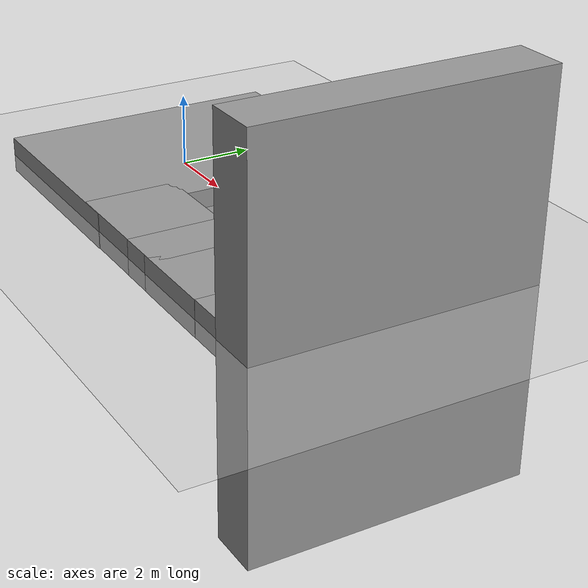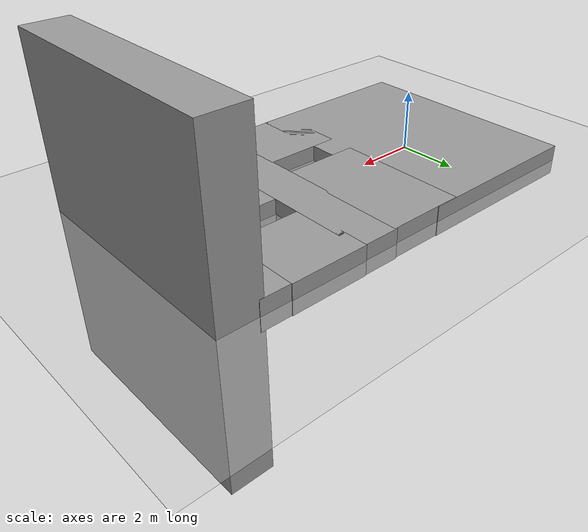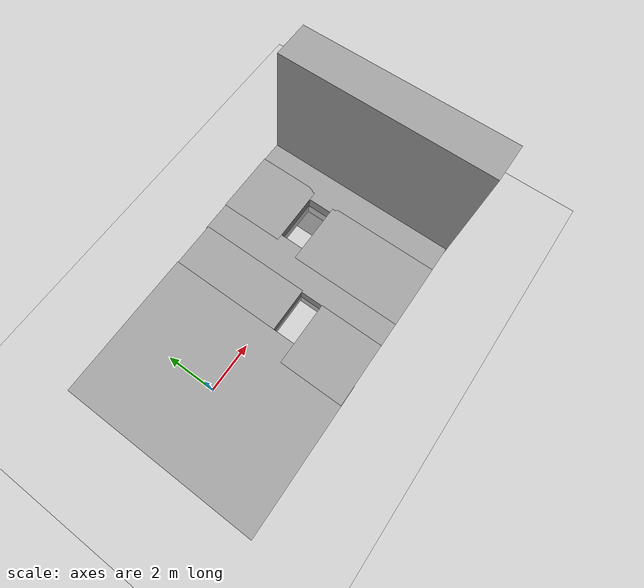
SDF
<sdf version="1.6">
 <world name="base_world">
  <physics name="default_physics" default="0" type="ode">
   <max_step_size>0.001</max_step_size>
   <real_time_factor>1</real_time_factor>
   <real_time_update_rate>1000</real_time_update_rate>
  </physics>
  <light name="sun" type="directional">
   <pose>0 0 10 0 -0 0</pose>
   <diffuse>0.8 0.8 0.8 1</diffuse>
   <specular>0.2 0.2 0.2 1</specular>
   <attenuation>
    <range>1000</range>
    <constant>0.9</constant>
    <linear>0.01</linear>
    <quadratic>0.001</quadratic>
   </attenuation>
   <direction>-0.5 0.1 -0.9</direction>
  </light>
  <model name="ground_plane">
   <static>1</static>
   <link name="link">
    <collision name="collision">
     <geometry><plane><normal>0 0 1</normal><size>100 100</size></plane></geometry>
     <surface>
      <contact><collide_bitmask>65535</collide_bitmask></contact>
      <friction><ode><mu>100</mu><mu2>50</mu2></ode></friction>
     </surface>
    </collision>
    <visual name="visual">
     <cast_shadows>0</cast_shadows>
     <geometry><plane><normal>0 0 1</normal><size>100 100</size></plane></geometry>
     <material>
      <script><uri>file://media/materials/scripts/gazebo.material</uri><name>Gazebo/Grey</name></script>
     </material>
    </visual>
   </link>
  </model>
  <gravity>0 0 -9.81</gravity>
  <magnetic_field>6e-06 2.3e-05 -4.2e-05</magnetic_field>
  <atmosphere type="adiabatic"/>
  <scene><ambient>0.4 0.4 0.4 1</ambient><background>0.7 0.7 0.7 1</background><shadows>1</shadows></scene>
  <audio><device>default</device></audio>
  <spherical_coordinates>
   <surface_model>EARTH_WGS84</surface_model>
   <latitude_deg>0</latitude_deg>
   <longitude_deg>0</longitude_deg>
   <elevation>0</elevation>
   <heading_deg>0</heading_deg>
  </spherical_coordinates>
  <model name="static_box">
   <link name="link">
    <inertial>
     <mass>0.0183792</mass>
     <inertia>
      <ixx>0.0035453</ixx>
      <ixy>0</ixy>
      <ixz>0</ixz>
      <iyy>0.00349943</iyy>
      <iyz>0</iyz>
      <izz>0.00398153</izz>
     </inertia>
    </inertial>
    <visual name="visual">
     <geometry><box><size>5.97092 8.00215 1</size></box></geometry>
     <material>
      <script><name>Gazebo/Grey</name><uri>file://media/materials/scripts/gazebo.material</uri></script>
     </material>
    </visual>
    <collision name="collision">
     <geometry><box><size>5.97092 8.00215 1</size></box></geometry>
     <surface>
      <friction>
       <ode><mu>1</mu><mu2>1</mu2><fdir1>0 0 0</fdir1><slip1>0</slip1><slip2>0</slip2></ode>
       <torsional>
        <coefficient>1</coefficient>
        <patch_radius>0</patch_radius>
        <surface_radius>0</surface_radius>
        <use_patch_radius>1</use_patch_radius>
        <ode><slip>0</slip></ode>
       </torsional>
      </friction>
      <bounce><restitution_coefficient>0</restitution_coefficient><threshold>1e+06</threshold></bounce>
      <contact>
       <collide_without_contact>0</collide_without_contact>
       <collide_without_contact_bitmask>1</collide_without_contact_bitmask>
       <collide_bitmask>1</collide_bitmask>
       <ode>
        <soft_cfm>0</soft_cfm>
        <soft_erp>0.2</soft_erp>
        <kp>1e+13</kp>
        <kd>1</kd>
        <max_vel>0.01</max_vel>
        <min_depth>0</min_depth>
       </ode>
       <bullet>
        <split_impulse>1</split_impulse>
        <split_impulse_penetration_threshold>-0.01</split_impulse_penetration_threshold>
        <soft_cfm>0</soft_cfm>
        <soft_erp>0.2</soft_erp>
        <kp>1e+13</kp>
        <kd>1</kd>
       </bullet>
      </contact>
     </surface>
    </collision>
   </link>
   <static>1</static>
   <pose>0.002926 -0.010903 0 0 -0 0</pose>
  </model>
  <model name="static_box_0">
   <link name="link">
    <inertial>
     <mass>0.0183792</mass>
     <inertia>
      <ixx>0.0035453</ixx>
      <ixy>0</ixy>
      <ixz>0</ixz>
      <iyy>0.00349943</iyy>
      <iyz>0</iyz>
      <izz>0.00398153</izz>
     </inertia>
    </inertial>
    <visual name="visual">
     <geometry><box><size>2.60974 2.57253 1</size></box></geometry>
     <material>
      <script><name>Gazebo/Grey</name><uri>file://media/materials/scripts/gazebo.material</uri></script>
     </material>
    </visual>
    <collision name="collision">
     <geometry><box><size>2.60974 2.57253 1</size></box></geometry>
     <surface>
      <friction>
       <ode><mu>1</mu><mu2>1</mu2><fdir1>0 0 0</fdir1><slip1>0</slip1><slip2>0</slip2></ode>
       <torsional>
        <coefficient>1</coefficient>
        <patch_radius>0</patch_radius>
        <surface_radius>0</surface_radius>
        <use_patch_radius>1</use_patch_radius>
        <ode><slip>0</slip></ode>
       </torsional>
      </friction>
      <bounce><restitution_coefficient>0</restitution_coefficient><threshold>1e+06</threshold></bounce>
      <contact>
       <collide_without_contact>0</collide_without_contact>
       <collide_without_contact_bitmask>1</collide_without_contact_bitmask>
       <collide_bitmask>1</collide_bitmask>
       <ode>
        <soft_cfm>0</soft_cfm>
        <soft_erp>0.2</soft_erp>
        <kp>1e+13</kp>
        <kd>1</kd>
        <max_vel>0.01</max_vel>
        <min_depth>0</min_depth>
       </ode>
       <bullet>
        <split_impulse>1</split_impulse>
        <split_impulse_penetration_threshold>-0.01</split_impulse_penetration_threshold>
        <soft_cfm>0</soft_cfm>
        <soft_erp>0.2</soft_erp>
        <kp>1e+13</kp>
        <kd>1</kd>
       </bullet>
      </contact>
     </surface>
    </collision>
   </link>
   <static>1</static>
   <pose>3.46463 -2.71007 0 0 -0 0</pose>
  </model>
  <model name="static_box_0_clone">
   <link name="link">
    <inertial>
     <mass>0.0183792</mass>
     <inertia>
      <ixx>0.0035453</ixx>
      <ixy>0</ixy>
      <ixz>0</ixz>
      <iyy>0.00349943</iyy>
      <iyz>0</iyz>
      <izz>0.00398153</izz>
     </inertia>
    </inertial>
    <visual name="visual">
     <geometry><box><size>2.64007 4.48993 1</size></box></geometry>
     <material>
      <script><name>Gazebo/Grey</name><uri>file://media/materials/scripts/gazebo.material</uri></script>
     </material>
    </visual>
    <collision name="collision">
     <geometry><box><size>2.64007 4.48993 1</size></box></geometry>
     <surface>
      <friction>
       <ode><mu>1</mu><mu2>1</mu2><fdir1>0 0 0</fdir1><slip1>0</slip1><slip2>0</slip2></ode>
       <torsional>
        <coefficient>1</coefficient>
        <patch_radius>0</patch_radius>
        <surface_radius>0</surface_radius>
        <use_patch_radius>1</use_patch_radius>
        <ode><slip>0</slip></ode>
       </torsional>
      </friction>
      <bounce><restitution_coefficient>0</restitution_coefficient><threshold>1e+06</threshold></bounce>
      <contact>
       <collide_without_contact>0</collide_without_contact>
       <collide_without_contact_bitmask>1</collide_without_contact_bitmask>
       <collide_bitmask>1</collide_bitmask>
       <ode>
        <soft_cfm>0</soft_cfm>
        <soft_erp>0.2</soft_erp>
        <kp>1e+13</kp>
        <kd>1</kd>
        <max_vel>0.01</max_vel>
        <min_depth>0</min_depth>
       </ode>
       <bullet>
        <split_impulse>1</split_impulse>
        <split_impulse_penetration_threshold>-0.01</split_impulse_penetration_threshold>
        <soft_cfm>0</soft_cfm>
        <soft_erp>0.2</soft_erp>
        <kp>1e+13</kp>
        <kd>1</kd>
       </bullet>
      </contact>
     </surface>
    </collision>
   </link>
   <static>1</static>
   <pose>3.49996 1.72261 -0 0 -0 0</pose>
  </model>
  <model name="static_box_clone">
   <link name="link">
    <inertial>
     <mass>0.0183792</mass>
     <inertia>
      <ixx>0.0035453</ixx>
      <ixy>0</ixy>
      <ixz>0</ixz>
      <iyy>0.00349943</iyy>
      <iyz>0</iyz>
      <izz>0.00398153</izz>
     </inertia>
    </inertial>
    <visual name="visual">
     <geometry><box><size>1.4579 8.00215 1</size></box></geometry>
     <material>
      <script><name>Gazebo/Grey</name><uri>file://media/materials/scripts/gazebo.material</uri></script>
     </material>
    </visual>
    <collision name="collision">
     <geometry><box><size>1.4579 8.00215 1</size></box></geometry>
     <surface>
      <friction>
       <ode><mu>1</mu><mu2>1</mu2><fdir1>0 0 0</fdir1><slip1>0</slip1><slip2>0</slip2></ode>
       <torsional>
        <coefficient>1</coefficient>
        <patch_radius>0</patch_radius>
        <surface_radius>0</surface_radius>
        <use_patch_radius>1</use_patch_radius>
        <ode><slip>0</slip></ode>
       </torsional>
      </friction>
      <bounce><restitution_coefficient>0</restitution_coefficient><threshold>1e+06</threshold></bounce>
      <contact>
       <collide_without_contact>0</collide_without_contact>
       <collide_without_contact_bitmask>1</collide_without_contact_bitmask>
       <collide_bitmask>1</collide_bitmask>
       <ode>
        <soft_cfm>0</soft_cfm>
        <soft_erp>0.2</soft_erp>
        <kp>1e+13</kp>
        <kd>1</kd>
        <max_vel>0.01</max_vel>
        <min_depth>0</min_depth>
       </ode>
       <bullet>
        <split_impulse>1</split_impulse>
        <split_impulse_penetration_threshold>-0.01</split_impulse_penetration_threshold>
        <soft_cfm>0</soft_cfm>
        <soft_erp>0.2</soft_erp>
        <kp>1e+13</kp>
        <kd>1</kd>
       </bullet>
      </contact>
     </surface>
    </collision>
   </link>
   <static>1</static>
   <pose>5.47789 0 0 0 -0 0</pose>
  </model>
  <model name="static_box_0_clone_0">
   <link name="link">
    <inertial>
     <mass>0.0183792</mass>
     <inertia>
      <ixx>0.0035453</ixx>
      <ixy>0</ixy>
      <ixz>0</ixz>
      <iyy>0.00349943</iyy>
      <iyz>0</iyz>
      <izz>0.00398153</izz>
     </inertia>
    </inertial>
    <visual name="visual">
     <geometry><box><size>2.60973 2.57254 1</size></box></geometry>
     <material>
      <script><name>Gazebo/Grey</name><uri>file://media/materials/scripts/gazebo.material</uri></script>
     </material>
    </visual>
    <collision name="collision">
     <geometry><box><size>2.60973 2.57254 1</size></box></geometry>
     <surface>
      <friction>
       <ode><mu>1</mu><mu2>1</mu2><fdir1>0 0 0</fdir1><slip1>0</slip1><slip2>0</slip2></ode>
       <torsional>
        <coefficient>1</coefficient>
        <patch_radius>0</patch_radius>
        <surface_radius>0</surface_radius>
        <use_patch_radius>1</use_patch_radius>
        <ode><slip>0</slip></ode>
       </torsional>
      </friction>
      <bounce><restitution_coefficient>0</restitution_coefficient><threshold>1e+06</threshold></bounce>
      <contact>
       <collide_without_contact>0</collide_without_contact>
       <collide_without_contact_bitmask>1</collide_without_contact_bitmask>
       <collide_bitmask>1</collide_bitmask>
       <ode>
        <soft_cfm>0</soft_cfm>
        <soft_erp>0.2</soft_erp>
        <kp>1e+13</kp>
        <kd>1</kd>
        <max_vel>0.01</max_vel>
        <min_depth>0</min_depth>
       </ode>
       <bullet>
        <split_impulse>1</split_impulse>
        <split_impulse_penetration_threshold>-0.01</split_impulse_penetration_threshold>
        <soft_cfm>0</soft_cfm>
        <soft_erp>0.2</soft_erp>
        <kp>1e+13</kp>
        <kd>1</kd>
       </bullet>
      </contact>
     </surface>
    </collision>
   </link>
   <static>1</static>
   <pose>7.27121 2.73766 0 0 -0 0</pose>
  </model>
  <model name="static_box_0_clone_clone">
   <link name="link">
    <inertial>
     <mass>0.0183792</mass>
     <inertia>
      <ixx>0.0035453</ixx>
      <ixy>0</ixy>
      <ixz>0</ixz>
      <iyy>0.00349943</iyy>
      <iyz>0</iyz>
      <izz>0.00398153</izz>
     </inertia>
    </inertial>
    <visual name="visual">
     <geometry><box><size>2.64006 4.48993 1</size></box></geometry>
     <material>
      <script><name>Gazebo/Grey</name><uri>file://media/materials/scripts/gazebo.material</uri></script>
     </material>
    </visual>
    <collision name="collision">
     <geometry><box><size>2.64006 4.48993 1</size></box></geometry>
     <surface>
      <friction>
       <ode><mu>1</mu><mu2>1</mu2><fdir1>0 0 0</fdir1><slip1>0</slip1><slip2>0</slip2></ode>
       <torsional>
        <coefficient>1</coefficient>
        <patch_radius>0</patch_radius>
        <surface_radius>0</surface_radius>
        <use_patch_radius>1</use_patch_radius>
        <ode><slip>0</slip></ode>
       </torsional>
      </friction>
      <bounce><restitution_coefficient>0</restitution_coefficient><threshold>1e+06</threshold></bounce>
      <contact>
       <collide_without_contact>0</collide_without_contact>
       <collide_without_contact_bitmask>1</collide_without_contact_bitmask>
       <collide_bitmask>1</collide_bitmask>
       <ode>
        <soft_cfm>0</soft_cfm>
        <soft_erp>0.2</soft_erp>
        <kp>1e+13</kp>
        <kd>1</kd>
        <max_vel>0.01</max_vel>
        <min_depth>0</min_depth>
       </ode>
       <bullet>
        <split_impulse>1</split_impulse>
        <split_impulse_penetration_threshold>-0.01</split_impulse_penetration_threshold>
        <soft_cfm>0</soft_cfm>
        <soft_erp>0.2</soft_erp>
        <kp>1e+13</kp>
        <kd>1</kd>
       </bullet>
      </contact>
     </surface>
    </collision>
   </link>
   <static>1</static>
   <pose>7.05799 -1.76229 0 0 -0 0</pose>
  </model>
  <model name="static_box_clone_clone">
   <link name="link">
    <inertial>
     <mass>0.0183792</mass>
     <inertia>
      <ixx>0.0035453</ixx>
      <ixy>0</ixy>
      <ixz>0</ixz>
      <iyy>0.00349943</iyy>
      <iyz>0</iyz>
      <izz>0.00398153</izz>
     </inertia>
    </inertial>
    <visual name="visual">
     <geometry><box><size>1.4579 8.00215 1</size></box></geometry>
     <material>
      <script><name>Gazebo/Grey</name><uri>file://media/materials/scripts/gazebo.material</uri></script>
     </material>
    </visual>
    <collision name="collision">
     <geometry><box><size>1.4579 8.00215 1</size></box></geometry>
     <surface>
      <friction>
       <ode><mu>1</mu><mu2>1</mu2><fdir1>0 0 0</fdir1><slip1>0</slip1><slip2>0</slip2></ode>
       <torsional>
        <coefficient>1</coefficient>
        <patch_radius>0</patch_radius>
        <surface_radius>0</surface_radius>
        <use_patch_radius>1</use_patch_radius>
        <ode><slip>0</slip></ode>
       </torsional>
      </friction>
      <bounce><restitution_coefficient>0</restitution_coefficient><threshold>1e+06</threshold></bounce>
      <contact>
       <collide_without_contact>0</collide_without_contact>
       <collide_without_contact_bitmask>1</collide_without_contact_bitmask>
       <collide_bitmask>1</collide_bitmask>
       <ode>
        <soft_cfm>0</soft_cfm>
        <soft_erp>0.2</soft_erp>
        <kp>1e+13</kp>
        <kd>1</kd>
        <max_vel>0.01</max_vel>
        <min_depth>0</min_depth>
       </ode>
       <bullet>
        <split_impulse>1</split_impulse>
        <split_impulse_penetration_threshold>-0.01</split_impulse_penetration_threshold>
        <soft_cfm>0</soft_cfm>
        <soft_erp>0.2</soft_erp>
        <kp>1e+13</kp>
        <kd>1</kd>
       </bullet>
      </contact>
     </surface>
    </collision>
   </link>
   <static>1</static>
   <pose>8.84938 0 0 0 -0 0</pose>
  </model>
  <model name="static_box_clone_clone_clone">
   <link name="link">
    <inertial>
     <mass>0.0183792</mass>
     <inertia>
      <ixx>0.0035453</ixx>
      <ixy>0</ixy>
      <ixz>0</ixz>
      <iyy>0.00349943</iyy>
      <iyz>0</iyz>
      <izz>0.00398153</izz>
     </inertia>
    </inertial>
    <visual name="visual">
     <geometry><box><size>1.4579 8.00215 11.0292</size></box></geometry>
     <material>
      <script><name>Gazebo/Grey</name><uri>file://media/materials/scripts/gazebo.material</uri></script>
     </material>
    </visual>
    <collision name="collision">
     <geometry><box><size>1.4579 8.00215 11.0292</size></box></geometry>
     <surface>
      <friction>
       <ode><mu>1</mu><mu2>1</mu2><fdir1>0 0 0</fdir1><slip1>0</slip1><slip2>0</slip2></ode>
       <torsional>
        <coefficient>1</coefficient>
        <patch_radius>0</patch_radius>
        <surface_radius>0</surface_radius>
        <use_patch_radius>1</use_patch_radius>
        <ode><slip>0</slip></ode>
       </torsional>
      </friction>
      <bounce><restitution_coefficient>0</restitution_coefficient><threshold>1e+06</threshold></bounce>
      <contact>
       <collide_without_contact>0</collide_without_contact>
       <collide_without_contact_bitmask>1</collide_without_contact_bitmask>
       <collide_bitmask>1</collide_bitmask>
       <ode>
        <soft_cfm>0</soft_cfm>
        <soft_erp>0.2</soft_erp>
        <kp>1e+13</kp>
        <kd>1</kd>
        <max_vel>0.01</max_vel>
        <min_depth>0</min_depth>
       </ode>
       <bullet>
        <split_impulse>1</split_impulse>
        <split_impulse_penetration_threshold>-0.01</split_impulse_penetration_threshold>
        <soft_cfm>0</soft_cfm>
        <soft_erp>0.2</soft_erp>
        <kp>1e+13</kp>
        <kd>1</kd>
       </bullet>
      </contact>
     </surface>
    </collision>
   </link>
   <static>1</static>
   <pose>10.1458 -0.015198 0 0 -0 0</pose>
  </model>
 </world>
</sdf>
